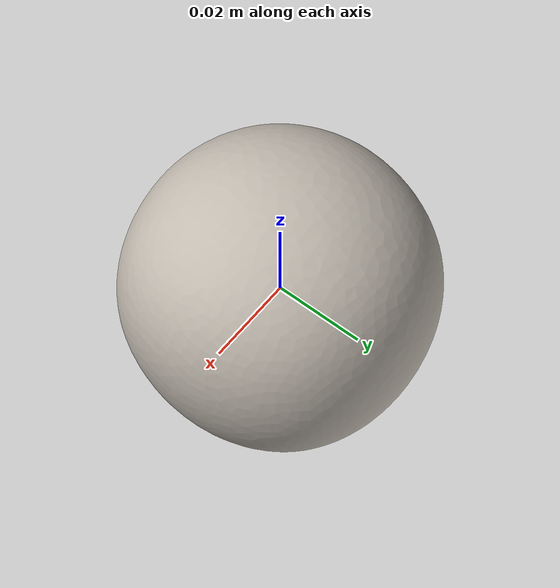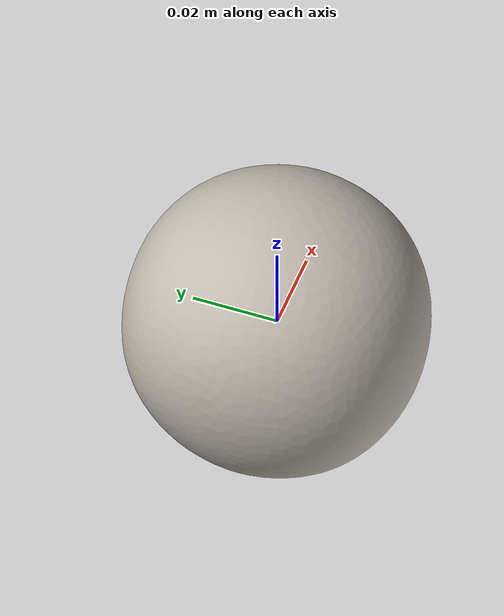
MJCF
<mujoco model="ball_cc8b7e34">
  <compiler angle="radian"/>
  <asset>
    <texture type="2d" name="ball_cc8b7e34_tex" file="ball_cc8b7e34_visual_0.png"/>
    <material name="ball_cc8b7e34_mat" texture="ball_cc8b7e34_tex"/>
    <mesh name="ball_cc8b7e34_visual" content_type="model/obj" file="ball_cc8b7e34_visual.obj" scale="-0.331486 0.331486 0.331486"/>
    <mesh name="ball_cc8b7e34_c0" content_type="model/obj" file="ball_cc8b7e34_c0.obj" scale="-0.331486 0.331486 0.331486"/>
  </asset>
  <worldbody>
    <body name="ball_cc8b7e34">
      <freejoint/>
      <geom name="ball_cc8b7e34_visual" type="mesh" mesh="ball_cc8b7e34_visual" mass="1e-8" contype="0" conaffinity="0" group="2" material="ball_cc8b7e34_mat"/>
      <geom name="ball_cc8b7e34_c0" type="mesh" mesh="ball_cc8b7e34_c0" group="3" density="411.888" friction="0.9 0.05 0.005" condim="4" rgba="0.4 0.5 0.9 0.35"/>
    </body>
  </worldbody>
</mujoco>
